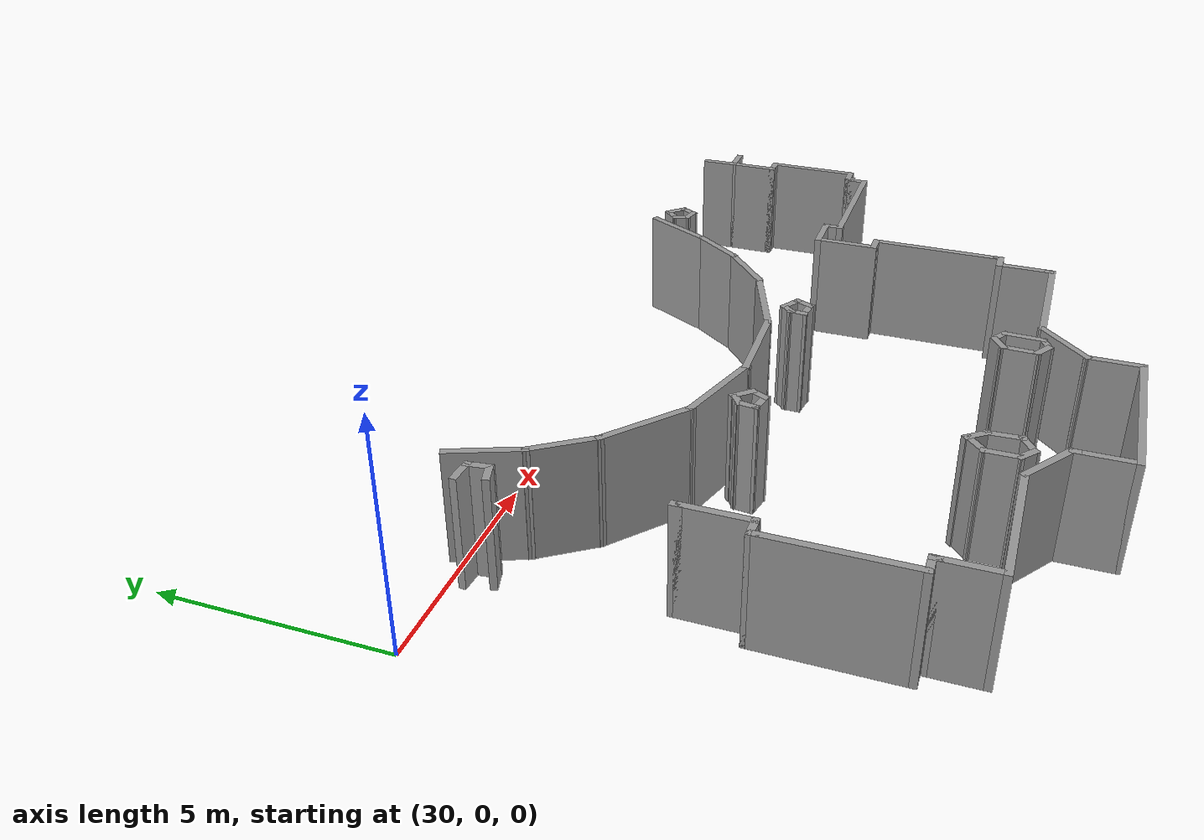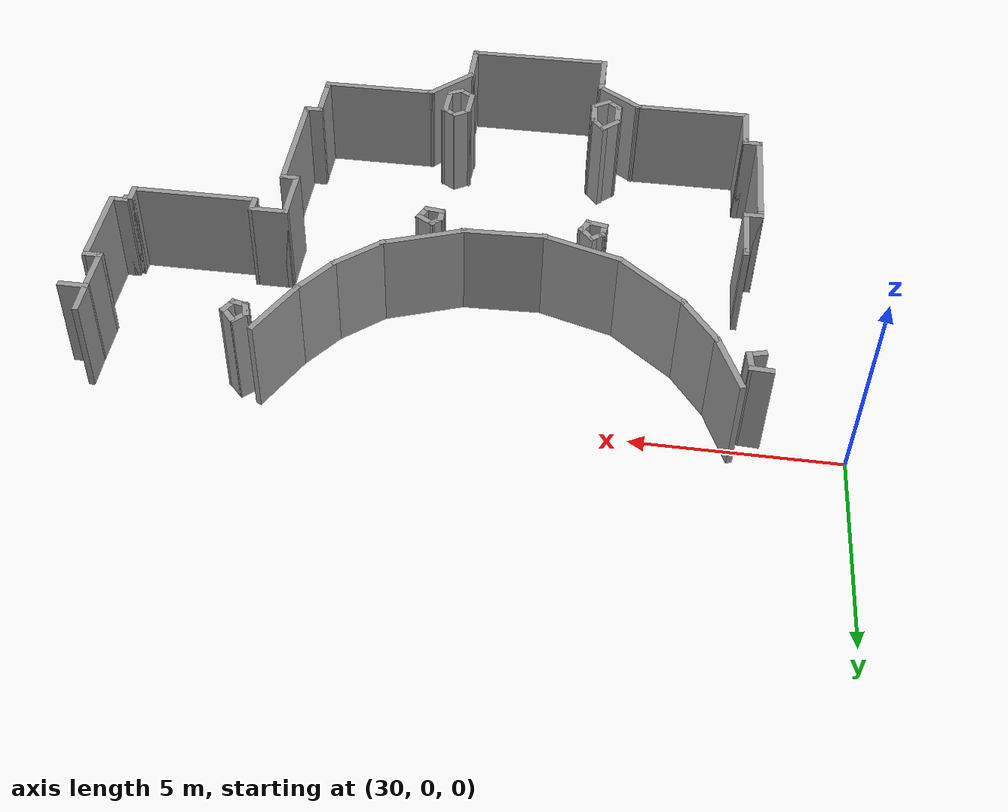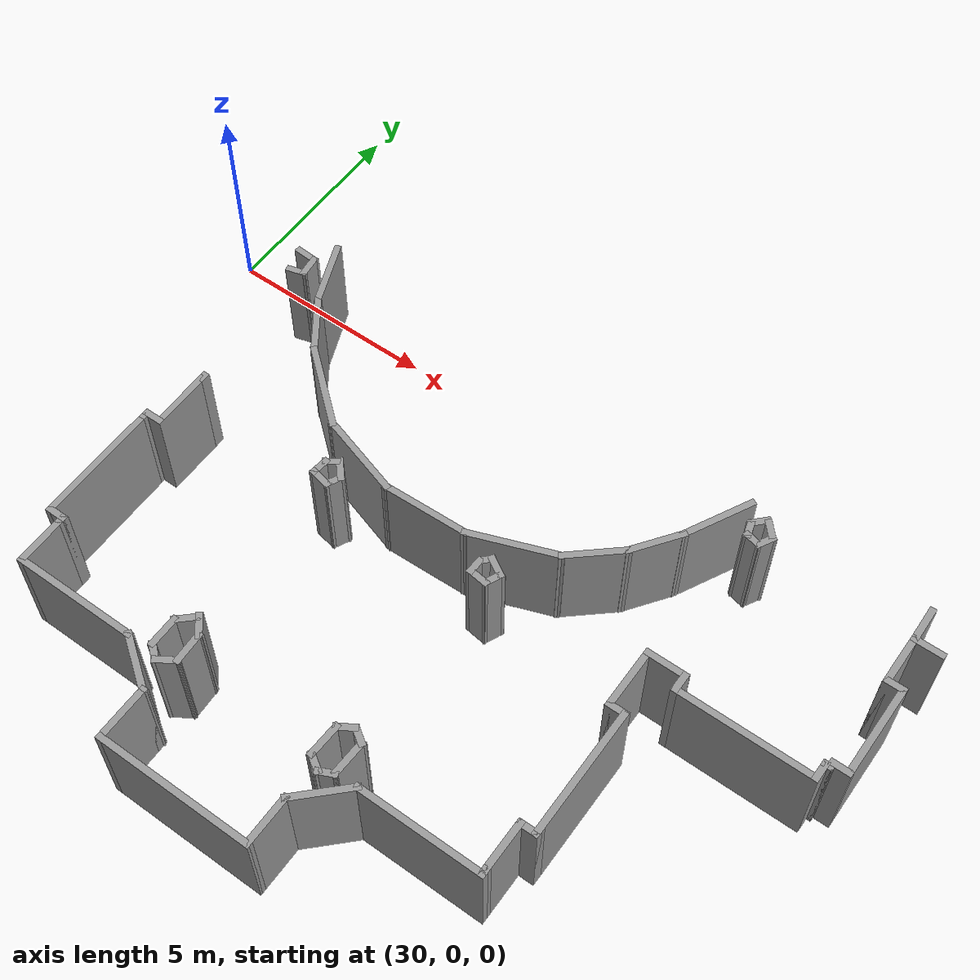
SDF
<sdf version="1.7">
 <model name="TD_n2">
  <pose>-6.42415 -9.1609 0 0 -0 0</pose>
  <link name="Wall_248">
   <collision name="Wall_248_Collision">
    <geometry><box><size>0.75 0.15 2.5</size></box></geometry>
    <pose>0 0 1.25 0 -0 0</pose>
   </collision>
   <visual name="Wall_248_Visual">
    <pose>0 0 1.25 0 -0 0</pose>
    <geometry><box><size>0.75 0.15 2.5</size></box></geometry>
    <material>
     <script><uri>file://media/materials/scripts/gazebo.material</uri><name>Gazebo/Grey</name></script>
     <ambient>1 1 1 1</ambient>
    </material>
    <meta><layer>0</layer></meta>
   </visual>
   <pose>54.6332 8.28733 0 0 -0 3.14159</pose>
  </link>
  <link name="Wall_249">
   <collision name="Wall_249_Collision">
    <geometry><box><size>1.25 0.15 2.5</size></box></geometry>
    <pose>0 0 1.25 0 -0 0</pose>
   </collision>
   <visual name="Wall_249_Visual">
    <pose>0 0 1.25 0 -0 0</pose>
    <geometry><box><size>1.25 0.15 2.5</size></box></geometry>
    <material>
     <script><uri>file://media/materials/scripts/gazebo.material</uri><name>Gazebo/Grey</name></script>
     <ambient>1 1 1 1</ambient>
    </material>
    <meta><layer>0</layer></meta>
   </visual>
   <pose>54.3332 7.73733 0 0 -0 -1.5708</pose>
  </link>
  <link name="Wall_250">
   <collision name="Wall_250_Collision">
    <geometry><box><size>0.5 0.15 2.5</size></box></geometry>
    <pose>0 0 1.25 0 -0 0</pose>
   </collision>
   <visual name="Wall_250_Visual">
    <pose>0 0 1.25 0 -0 0</pose>
    <geometry><box><size>0.5 0.15 2.5</size></box></geometry>
    <material>
     <script><uri>file://media/materials/scripts/gazebo.material</uri><name>Gazebo/Grey</name></script>
     <ambient>1 1 1 1</ambient>
    </material>
    <meta><layer>0</layer></meta>
   </visual>
   <pose>54.5082 7.18733 0 0 -0 0</pose>
  </link>
  <link name="Wall_252">
   <collision name="Wall_252_Collision">
    <geometry><box><size>2.25 0.15 2.5</size></box></geometry>
    <pose>0 0 1.25 0 -0 0</pose>
   </collision>
   <visual name="Wall_252_Visual">
    <pose>0 0 1.25 0 -0 0</pose>
    <geometry><box><size>2.25 0.15 2.5</size></box></geometry>
    <material>
     <script><uri>file://media/materials/scripts/gazebo.material</uri><name>Gazebo/Grey</name></script>
     <ambient>1 1 1 1</ambient>
    </material>
    <meta><layer>0</layer></meta>
   </visual>
   <pose>54.6832 6.13733 0 0 -0 -1.5708</pose>
  </link>
  <link name="Wall_253">
   <collision name="Wall_253_Collision">
    <geometry><box><size>0.5 0.15 2.5</size></box></geometry>
    <pose>0 0 1.25 0 -0 0</pose>
   </collision>
   <visual name="Wall_253_Visual">
    <pose>0 0 1.25 0 -0 0</pose>
    <geometry><box><size>0.5 0.15 2.5</size></box></geometry>
    <material>
     <script><uri>file://media/materials/scripts/gazebo.material</uri><name>Gazebo/Grey</name></script>
     <ambient>1 1 1 1</ambient>
    </material>
    <meta><layer>0</layer></meta>
   </visual>
   <pose>54.5082 5.08733 0 0 -0 3.14159</pose>
  </link>
  <link name="Wall_254">
   <collision name="Wall_254_Collision">
    <geometry><box><size>0.25 0.15 2.5</size></box></geometry>
    <pose>0 0 1.25 0 -0 0</pose>
   </collision>
   <visual name="Wall_254_Visual">
    <pose>0 0 1.25 0 -0 0</pose>
    <geometry><box><size>0.25 0.15 2.5</size></box></geometry>
    <material>
     <script><uri>file://media/materials/scripts/gazebo.material</uri><name>Gazebo/Grey</name></script>
     <ambient>1 1 1 1</ambient>
    </material>
    <meta><layer>0</layer></meta>
   </visual>
   <pose>54.3332 5.03733 0 0 -0 -1.5708</pose>
  </link>
  <link name="Wall_255">
   <collision name="Wall_255_Collision">
    <geometry><box><size>0.25 0.15 2.5</size></box></geometry>
    <pose>0 0 1.25 0 -0 0</pose>
   </collision>
   <visual name="Wall_255_Visual">
    <pose>0 0 1.25 0 -0 0</pose>
    <geometry><box><size>0.25 0.15 2.5</size></box></geometry>
    <material>
     <script><uri>file://media/materials/scripts/gazebo.material</uri><name>Gazebo/Grey</name></script>
     <ambient>1 1 1 1</ambient>
    </material>
    <meta><layer>0</layer></meta>
   </visual>
   <pose>54.2832 4.98733 0 0 -0 3.14159</pose>
  </link>
  <link name="Wall_256">
   <collision name="Wall_256_Collision">
    <geometry><box><size>0.5 0.15 2.5</size></box></geometry>
    <pose>0 0 1.25 0 -0 0</pose>
   </collision>
   <visual name="Wall_256_Visual">
    <pose>0 0 1.25 0 -0 0</pose>
    <geometry><box><size>0.5 0.15 2.5</size></box></geometry>
    <material>
     <script><uri>file://media/materials/scripts/gazebo.material</uri><name>Gazebo/Grey</name></script>
     <ambient>1 1 1 1</ambient>
    </material>
    <meta><layer>0</layer></meta>
   </visual>
   <pose>54.2332 4.81233 0 0 -0 -1.5708</pose>
  </link>
  <link name="Wall_257">
   <collision name="Wall_257_Collision">
    <geometry><box><size>3.25 0.15 2.5</size></box></geometry>
    <pose>0 0 1.25 0 -0 0</pose>
   </collision>
   <visual name="Wall_257_Visual">
    <pose>0 0 1.25 0 -0 0</pose>
    <geometry><box><size>3.25 0.15 2.5</size></box></geometry>
    <material>
     <script><uri>file://media/materials/scripts/gazebo.material</uri><name>Gazebo/Grey</name></script>
     <ambient>1 1 1 1</ambient>
    </material>
    <meta><layer>0</layer></meta>
   </visual>
   <pose>52.6832 4.63733 0 0 -0 3.14159</pose>
  </link>
  <link name="Wall_258">
   <collision name="Wall_258_Collision">
    <geometry><box><size>0.5 0.15 2.5</size></box></geometry>
    <pose>0 0 1.25 0 -0 0</pose>
   </collision>
   <visual name="Wall_258_Visual">
    <pose>0 0 1.25 0 -0 0</pose>
    <geometry><box><size>0.5 0.15 2.5</size></box></geometry>
    <material>
     <script><uri>file://media/materials/scripts/gazebo.material</uri><name>Gazebo/Grey</name></script>
     <ambient>1 1 1 1</ambient>
    </material>
    <meta><layer>0</layer></meta>
   </visual>
   <pose>51.1332 4.81233 0 0 -0 1.5708</pose>
  </link>
  <link name="Wall_259">
   <collision name="Wall_259_Collision">
    <geometry><box><size>1 0.15 2.5</size></box></geometry>
    <pose>0 0 1.25 0 -0 0</pose>
   </collision>
   <visual name="Wall_259_Visual">
    <pose>0 0 1.25 0 -0 0</pose>
    <geometry><box><size>1 0.15 2.5</size></box></geometry>
    <material>
     <script><uri>file://media/materials/scripts/gazebo.material</uri><name>Gazebo/Grey</name></script>
     <ambient>1 1 1 1</ambient>
    </material>
    <meta><layer>0</layer></meta>
   </visual>
   <pose>50.7082 4.98733 0 0 -0 3.14159</pose>
  </link>
  <link name="Wall_261">
   <collision name="Wall_261_Collision">
    <geometry><box><size>1.5 0.15 2.5</size></box></geometry>
    <pose>0 0 1.25 0 -0 0</pose>
   </collision>
   <visual name="Wall_261_Visual">
    <pose>0 0 1.25 0 -0 0</pose>
    <geometry><box><size>1.5 0.15 2.5</size></box></geometry>
    <material>
     <script><uri>file://media/materials/scripts/gazebo.material</uri><name>Gazebo/Grey</name></script>
     <ambient>1 1 1 1</ambient>
    </material>
    <meta><layer>0</layer></meta>
   </visual>
   <pose>50.2832 4.31233 0 0 -0 -1.5708</pose>
  </link>
  <link name="Wall_262">
   <collision name="Wall_262_Collision">
    <geometry><box><size>0.5 0.15 2.5</size></box></geometry>
    <pose>0 0 1.25 0 -0 0</pose>
   </collision>
   <visual name="Wall_262_Visual">
    <pose>0 0 1.25 0 -0 0</pose>
    <geometry><box><size>0.5 0.15 2.5</size></box></geometry>
    <material>
     <script><uri>file://media/materials/scripts/gazebo.material</uri><name>Gazebo/Grey</name></script>
     <ambient>1 1 1 1</ambient>
    </material>
    <meta><layer>0</layer></meta>
   </visual>
   <pose>50.4582 3.63733 0 0 -0 0</pose>
  </link>
  <link name="Wall_264">
   <collision name="Wall_264_Collision">
    <geometry><box><size>3 0.15 2.5</size></box></geometry>
    <pose>0 0 1.25 0 -0 0</pose>
   </collision>
   <visual name="Wall_264_Visual">
    <pose>0 0 1.25 0 -0 0</pose>
    <geometry><box><size>3 0.15 2.5</size></box></geometry>
    <material>
     <script><uri>file://media/materials/scripts/gazebo.material</uri><name>Gazebo/Grey</name></script>
     <ambient>1 1 1 1</ambient>
    </material>
    <meta><layer>0</layer></meta>
   </visual>
   <pose>50.6332 2.21233 0 0 -0 -1.5708</pose>
  </link>
  <link name="Wall_265">
   <collision name="Wall_265_Collision">
    <geometry><box><size>0.25 0.15 2.5</size></box></geometry>
    <pose>0 0 1.25 0 -0 0</pose>
   </collision>
   <visual name="Wall_265_Visual">
    <pose>0 0 1.25 0 -0 0</pose>
    <geometry><box><size>0.25 0.15 2.5</size></box></geometry>
    <material>
     <script><uri>file://media/materials/scripts/gazebo.material</uri><name>Gazebo/Grey</name></script>
     <ambient>1 1 1 1</ambient>
    </material>
    <meta><layer>0</layer></meta>
   </visual>
   <pose>50.6332 0.737326 0 0 -0 -1.5708</pose>
  </link>
  <link name="Wall_266">
   <collision name="Wall_266_Collision">
    <geometry><box><size>0.5 0.15 2.5</size></box></geometry>
    <pose>0 0 1.25 0 -0 0</pose>
   </collision>
   <visual name="Wall_266_Visual">
    <pose>0 0 1.25 0 -0 0</pose>
    <geometry><box><size>0.5 0.15 2.5</size></box></geometry>
    <material>
     <script><uri>file://media/materials/scripts/gazebo.material</uri><name>Gazebo/Grey</name></script>
     <ambient>1 1 1 1</ambient>
    </material>
    <meta><layer>0</layer></meta>
   </visual>
   <pose>50.4582 0.687325 0 0 -0 3.14159</pose>
  </link>
  <link name="Wall_268">
   <collision name="Wall_268_Collision">
    <geometry><box><size>1.25 0.15 2.5</size></box></geometry>
    <pose>0 0 1.25 0 -0 0</pose>
   </collision>
   <visual name="Wall_268_Visual">
    <pose>0 0 1.25 0 -0 0</pose>
    <geometry><box><size>1.25 0.15 2.5</size></box></geometry>
    <material>
     <script><uri>file://media/materials/scripts/gazebo.material</uri><name>Gazebo/Grey</name></script>
     <ambient>1 1 1 1</ambient>
    </material>
    <meta><layer>0</layer></meta>
   </visual>
   <pose>50.2832 0.137325 0 0 -0 -1.5708</pose>
  </link>
  <link name="Wall_269">
   <collision name="Wall_269_Collision">
    <geometry><box><size>0.25 0.15 2.5</size></box></geometry>
    <pose>0 0 1.25 0 -0 0</pose>
   </collision>
   <visual name="Wall_269_Visual">
    <pose>0 0 1.25 0 -0 0</pose>
    <geometry><box><size>0.25 0.15 2.5</size></box></geometry>
    <material>
     <script><uri>file://media/materials/scripts/gazebo.material</uri><name>Gazebo/Grey</name></script>
     <ambient>1 1 1 1</ambient>
    </material>
    <meta><layer>0</layer></meta>
   </visual>
   <pose>50.2832 -0.462674 0 0 -0 -1.5708</pose>
  </link>
  <link name="Wall_270">
   <collision name="Wall_270_Collision">
    <geometry><box><size>3 0.15 2.5</size></box></geometry>
    <pose>0 0 1.25 0 -0 0</pose>
   </collision>
   <visual name="Wall_270_Visual">
    <pose>0 0 1.25 0 -0 0</pose>
    <geometry><box><size>3 0.15 2.5</size></box></geometry>
    <material>
     <script><uri>file://media/materials/scripts/gazebo.material</uri><name>Gazebo/Grey</name></script>
     <ambient>1 1 1 1</ambient>
    </material>
    <meta><layer>0</layer></meta>
   </visual>
   <pose>48.8582 -0.512674 0 0 -0 3.14159</pose>
  </link>
  <link name="Wall_272">
   <collision name="Wall_272_Collision">
    <geometry><box><size>1.5 0.15 2.5</size></box></geometry>
    <pose>0 0 1.25 0 -0 0</pose>
   </collision>
   <visual name="Wall_272_Visual">
    <pose>0 0 1.25 0 -0 0</pose>
    <geometry><box><size>1.5 0.15 2.5</size></box></geometry>
    <material>
     <script><uri>file://media/materials/scripts/gazebo.material</uri><name>Gazebo/Grey</name></script>
     <ambient>1 1 1 1</ambient>
    </material>
    <meta><layer>0</layer></meta>
   </visual>
   <pose>46.9559 -0.989971 0 0 -0 -2.35619</pose>
  </link>
  <link name="Wall_273">
   <collision name="Wall_273_Collision">
    <geometry><box><size>1.25 0.15 2.5</size></box></geometry>
    <pose>0 0 1.25 0 -0 0</pose>
   </collision>
   <visual name="Wall_273_Visual">
    <pose>0 0 1.25 0 -0 0</pose>
    <geometry><box><size>1.25 0.15 2.5</size></box></geometry>
    <material>
     <script><uri>file://media/materials/scripts/gazebo.material</uri><name>Gazebo/Grey</name></script>
     <ambient>1 1 1 1</ambient>
    </material>
    <meta><layer>0</layer></meta>
   </visual>
   <pose>46.4786 -2.01727 0 0 -0 -1.5708</pose>
  </link>
  <link name="Wall_274">
   <collision name="Wall_274_Collision">
    <geometry><box><size>3.75 0.15 2.5</size></box></geometry>
    <pose>0 0 1.25 0 -0 0</pose>
   </collision>
   <visual name="Wall_274_Visual">
    <pose>0 0 1.25 0 -0 0</pose>
    <geometry><box><size>3.75 0.15 2.5</size></box></geometry>
    <material>
     <script><uri>file://media/materials/scripts/gazebo.material</uri><name>Gazebo/Grey</name></script>
     <ambient>1 1 1 1</ambient>
    </material>
    <meta><layer>0</layer></meta>
   </visual>
   <pose>44.6786 -2.56727 0 0 -0 3.14159</pose>
  </link>
  <link name="Wall_275">
   <collision name="Wall_275_Collision">
    <geometry><box><size>1.25 0.15 2.5</size></box></geometry>
    <pose>0 0 1.25 0 -0 0</pose>
   </collision>
   <visual name="Wall_275_Visual">
    <pose>0 0 1.25 0 -0 0</pose>
    <geometry><box><size>1.25 0.15 2.5</size></box></geometry>
    <material>
     <script><uri>file://media/materials/scripts/gazebo.material</uri><name>Gazebo/Grey</name></script>
     <ambient>1 1 1 1</ambient>
    </material>
    <meta><layer>0</layer></meta>
   </visual>
   <pose>42.8786 -2.01727 0 0 -0 1.5708</pose>
  </link>
  <link name="Wall_276">
   <collision name="Wall_276_Collision">
    <geometry><box><size>0.25 0.15 2.5</size></box></geometry>
    <pose>0 0 1.25 0 -0 0</pose>
   </collision>
   <visual name="Wall_276_Visual">
    <pose>0 0 1.25 0 -0 0</pose>
    <geometry><box><size>0.25 0.15 2.5</size></box></geometry>
    <material>
     <script><uri>file://media/materials/scripts/gazebo.material</uri><name>Gazebo/Grey</name></script>
     <ambient>1 1 1 1</ambient>
    </material>
    <meta><layer>0</layer></meta>
   </visual>
   <pose>42.8786 -1.41727 0 0 -0 1.5708</pose>
  </link>
  <link name="Wall_277">
   <collision name="Wall_277_Collision">
    <geometry><box><size>1.42122 0.15 2.5</size></box></geometry>
    <pose>0 0 1.25 0 -0 0</pose>
   </collision>
   <visual name="Wall_277_Visual">
    <pose>0 0 1.25 0 -0 0</pose>
    <geometry><box><size>1.42122 0.15 2.5</size></box></geometry>
    <material>
     <script><uri>file://media/materials/scripts/gazebo.material</uri><name>Gazebo/Grey</name></script>
     <ambient>1 1 1 1</ambient>
    </material>
    <meta><layer>0</layer></meta>
   </visual>
   <pose>42.3609 -0.998538 0 0 -0 2.52272</pose>
  </link>
  <link name="Wall_278">
   <collision name="Wall_278_Collision">
    <geometry><box><size>3 0.15 2.5</size></box></geometry>
    <pose>0 0 1.25 0 -0 0</pose>
   </collision>
   <visual name="Wall_278_Visual">
    <pose>0 0 1.25 0 -0 0</pose>
    <geometry><box><size>3 0.15 2.5</size></box></geometry>
    <material>
     <script><uri>file://media/materials/scripts/gazebo.material</uri><name>Gazebo/Grey</name></script>
     <ambient>1 1 1 1</ambient>
    </material>
    <meta><layer>0</layer></meta>
   </visual>
   <pose>40.4182 -0.629807 0 0 -0 3.14159</pose>
  </link>
  <link name="Wall_279">
   <collision name="Wall_279_Collision">
    <geometry><box><size>1.25 0.15 2.5</size></box></geometry>
    <pose>0 0 1.25 0 -0 0</pose>
   </collision>
   <visual name="Wall_279_Visual">
    <pose>0 0 1.25 0 -0 0</pose>
    <geometry><box><size>1.25 0.15 2.5</size></box></geometry>
    <material>
     <script><uri>file://media/materials/scripts/gazebo.material</uri><name>Gazebo/Grey</name></script>
     <ambient>1 1 1 1</ambient>
    </material>
    <meta><layer>0</layer></meta>
   </visual>
   <pose>38.9932 -0.079807 0 0 -0 1.5708</pose>
  </link>
  <link name="Wall_280">
   <collision name="Wall_280_Collision">
    <geometry><box><size>0.25 0.15 2.5</size></box></geometry>
    <pose>0 0 1.25 0 -0 0</pose>
   </collision>
   <visual name="Wall_280_Visual">
    <pose>0 0 1.25 0 -0 0</pose>
    <geometry><box><size>0.25 0.15 2.5</size></box></geometry>
    <material>
     <script><uri>file://media/materials/scripts/gazebo.material</uri><name>Gazebo/Grey</name></script>
     <ambient>1 1 1 1</ambient>
    </material>
    <meta><layer>0</layer></meta>
   </visual>
   <pose>38.9932 0.520192 0 0 -0 1.5708</pose>
  </link>
  <link name="Wall_281">
   <collision name="Wall_281_Collision">
    <geometry><box><size>0.5 0.15 2.5</size></box></geometry>
    <pose>0 0 1.25 0 -0 0</pose>
   </collision>
   <visual name="Wall_281_Visual">
    <pose>0 0 1.25 0 -0 0</pose>
    <geometry><box><size>0.5 0.15 2.5</size></box></geometry>
    <material>
     <script><uri>file://media/materials/scripts/gazebo.material</uri><name>Gazebo/Grey</name></script>
     <ambient>1 1 1 1</ambient>
    </material>
    <meta><layer>0</layer></meta>
   </visual>
   <pose>38.8182 0.570192 0 0 -0 3.14159</pose>
  </link>
  <link name="Wall_282">
   <collision name="Wall_282_Collision">
    <geometry><box><size>3 0.15 2.5</size></box></geometry>
    <pose>0 0 1.25 0 -0 0</pose>
   </collision>
   <visual name="Wall_282_Visual">
    <pose>0 0 1.25 0 -0 0</pose>
    <geometry><box><size>3 0.15 2.5</size></box></geometry>
    <material>
     <script><uri>file://media/materials/scripts/gazebo.material</uri><name>Gazebo/Grey</name></script>
     <ambient>1 1 1 1</ambient>
    </material>
    <meta><layer>0</layer></meta>
   </visual>
   <pose>38.6432 1.99519 0 0 -0 1.5708</pose>
  </link>
  <link name="Wall_283">
   <collision name="Wall_283_Collision">
    <geometry><box><size>0.25 0.15 2.5</size></box></geometry>
    <pose>0 0 1.25 0 -0 0</pose>
   </collision>
   <visual name="Wall_283_Visual">
    <pose>0 0 1.25 0 -0 0</pose>
    <geometry><box><size>0.25 0.15 2.5</size></box></geometry>
    <material>
     <script><uri>file://media/materials/scripts/gazebo.material</uri><name>Gazebo/Grey</name></script>
     <ambient>1 1 1 1</ambient>
    </material>
    <meta><layer>0</layer></meta>
   </visual>
   <pose>38.6432 3.47019 0 0 -0 1.5708</pose>
  </link>
  <link name="Wall_284">
   <collision name="Wall_284_Collision">
    <geometry><box><size>0.5 0.15 2.5</size></box></geometry>
    <pose>0 0 1.25 0 -0 0</pose>
   </collision>
   <visual name="Wall_284_Visual">
    <pose>0 0 1.25 0 -0 0</pose>
    <geometry><box><size>0.5 0.15 2.5</size></box></geometry>
    <material>
     <script><uri>file://media/materials/scripts/gazebo.material</uri><name>Gazebo/Grey</name></script>
     <ambient>1 1 1 1</ambient>
    </material>
    <meta><layer>0</layer></meta>
   </visual>
   <pose>38.8182 3.52019 0 0 -0 0</pose>
  </link>
  <link name="Wall_286">
   <collision name="Wall_286_Collision">
    <geometry><box><size>1.5 0.15 2.5</size></box></geometry>
    <pose>0 0 1.25 0 -0 0</pose>
   </collision>
   <visual name="Wall_286_Visual">
    <pose>0 0 1.25 0 -0 0</pose>
    <geometry><box><size>1.5 0.15 2.5</size></box></geometry>
    <material>
     <script><uri>file://media/materials/scripts/gazebo.material</uri><name>Gazebo/Grey</name></script>
     <ambient>1 1 1 1</ambient>
    </material>
    <meta><layer>0</layer></meta>
   </visual>
   <pose>38.9932 4.19519 0 0 -0 1.5708</pose>
  </link>
  <link name="Wall_287">
   <collision name="Wall_287_Collision">
    <geometry><box><size>0.25 0.15 2.5</size></box></geometry>
    <pose>0 0 1.25 0 -0 0</pose>
   </collision>
   <visual name="Wall_287_Visual">
    <pose>0 0 1.25 0 -0 0</pose>
    <geometry><box><size>0.25 0.15 2.5</size></box></geometry>
    <material>
     <script><uri>file://media/materials/scripts/gazebo.material</uri><name>Gazebo/Grey</name></script>
     <ambient>1 1 1 1</ambient>
    </material>
    <meta><layer>0</layer></meta>
   </visual>
   <pose>38.9932 4.92019 0 0 -0 1.5708</pose>
  </link>
  <link name="Wall_508">
   <collision name="Wall_508_Collision">
    <geometry><box><size>0.897649 0.15 2.5</size></box></geometry>
    <pose>0 0 1.25 0 -0 0</pose>
   </collision>
   <visual name="Wall_508_Visual">
    <pose>0 0 1.25 0 -0 0</pose>
    <geometry><box><size>0.897649 0.15 2.5</size></box></geometry>
    <material>
     <script><uri>file://media/materials/scripts/gazebo.material</uri><name>Gazebo/Grey</name></script>
     <ambient>1 1 1 1</ambient>
    </material>
    <meta><layer>0</layer></meta>
   </visual>
   <pose>54.3263 8.66109 0 0 -0 -1.55237</pose>
  </link>
  <link name="Wall_515">
   <collision name="Wall_515_Collision">
    <geometry><box><size>0.588634 0.15 2.5</size></box></geometry>
    <pose>0 0 1.25 0 -0 0</pose>
   </collision>
   <visual name="Wall_515_Visual">
    <pose>0 0 1.25 0 -0 0</pose>
    <geometry><box><size>0.588634 0.15 2.5</size></box></geometry>
    <material>
     <script><uri>file://media/materials/scripts/gazebo.material</uri><name>Gazebo/Grey</name></script>
     <ambient>1 1 1 1</ambient>
    </material>
    <meta><layer>0</layer></meta>
   </visual>
   <pose>42.5264 0.289694 0 0 -0 -2.38844</pose>
  </link>
  <link name="Wall_516">
   <collision name="Wall_516_Collision">
    <geometry><box><size>0.8 0.15 2.5</size></box></geometry>
    <pose>0 0 1.25 0 -0 0</pose>
   </collision>
   <visual name="Wall_516_Visual">
    <pose>0 0 1.25 0 -0 0</pose>
    <geometry><box><size>0.8 0.15 2.5</size></box></geometry>
    <material>
     <script><uri>file://media/materials/scripts/gazebo.material</uri><name>Gazebo/Grey</name></script>
     <ambient>1 1 1 1</ambient>
    </material>
    <meta><layer>0</layer></meta>
   </visual>
   <pose>42.3664 -0.185307 0 0 -0 -1.5708</pose>
  </link>
  <link name="Wall_517">
   <collision name="Wall_517_Collision">
    <geometry><box><size>0.504683 0.15 2.5</size></box></geometry>
    <pose>0 0 1.25 0 -0 0</pose>
   </collision>
   <visual name="Wall_517_Visual">
    <pose>0 0 1.25 0 -0 0</pose>
    <geometry><box><size>0.504683 0.15 2.5</size></box></geometry>
    <material>
     <script><uri>file://media/materials/scripts/gazebo.material</uri><name>Gazebo/Grey</name></script>
     <ambient>1 1 1 1</ambient>
    </material>
    <meta><layer>0</layer></meta>
   </visual>
   <pose>42.5014 -0.625306 0 0 -0 -0.705568</pose>
  </link>
  <link name="Wall_518">
   <collision name="Wall_518_Collision">
    <geometry><box><size>0.591022 0.15 2.5</size></box></geometry>
    <pose>0 0 1.25 0 -0 0</pose>
   </collision>
   <visual name="Wall_518_Visual">
    <pose>0 0 1.25 0 -0 0</pose>
    <geometry><box><size>0.591022 0.15 2.5</size></box></geometry>
    <material>
     <script><uri>file://media/materials/scripts/gazebo.material</uri><name>Gazebo/Grey</name></script>
     <ambient>1 1 1 1</ambient>
    </material>
    <meta><layer>0</layer></meta>
   </visual>
   <pose>42.8214 -0.620306 0 0 -0 0.575425</pose>
  </link>
  <link name="Wall_519">
   <collision name="Wall_519_Collision">
    <geometry><box><size>0.800692 0.15 2.5</size></box></geometry>
    <pose>0 0 1.25 0 -0 0</pose>
   </collision>
   <visual name="Wall_519_Visual">
    <pose>0 0 1.25 0 -0 0</pose>
    <geometry><box><size>0.800692 0.15 2.5</size></box></geometry>
    <material>
     <script><uri>file://media/materials/scripts/gazebo.material</uri><name>Gazebo/Grey</name></script>
     <ambient>1 1 1 1</ambient>
    </material>
    <meta><layer>0</layer></meta>
   </visual>
   <pose>42.9914 -0.175306 0 0 -0 1.61692</pose>
  </link>
  <link name="Wall_520">
   <collision name="Wall_520_Collision">
    <geometry><box><size>0.584166 0.15 2.5</size></box></geometry>
    <pose>0 0 1.25 0 -0 0</pose>
   </collision>
   <visual name="Wall_520_Visual">
    <pose>0 0 1.25 0 -0 0</pose>
    <geometry><box><size>0.584166 0.15 2.5</size></box></geometry>
    <material>
     <script><uri>file://media/materials/scripts/gazebo.material</uri><name>Gazebo/Grey</name></script>
     <ambient>1 1 1 1</ambient>
    </material>
    <meta><layer>0</layer></meta>
   </visual>
   <pose>42.8414 0.319694 0 0 -0 2.24194</pose>
  </link>
  <link name="Wall_522">
   <collision name="Wall_522_Collision">
    <geometry><box><size>0.505106 0.15 2.5</size></box></geometry>
    <pose>0 0 1.25 0 -0 0</pose>
   </collision>
   <visual name="Wall_522_Visual">
    <pose>0 0 1.25 0 -0 0</pose>
    <geometry><box><size>0.505106 0.15 2.5</size></box></geometry>
    <material>
     <script><uri>file://media/materials/scripts/gazebo.material</uri><name>Gazebo/Grey</name></script>
     <ambient>1 1 1 1</ambient>
    </material>
    <meta><layer>0</layer></meta>
   </visual>
   <pose>46.5064 0.304694 0 0 -0 -2.57702</pose>
  </link>
  <link name="Wall_523">
   <collision name="Wall_523_Collision">
    <geometry><box><size>0.860634 0.15 2.5</size></box></geometry>
    <pose>0 0 1.25 0 -0 0</pose>
   </collision>
   <visual name="Wall_523_Visual">
    <pose>0 0 1.25 0 -0 0</pose>
    <geometry><box><size>0.860634 0.15 2.5</size></box></geometry>
    <material>
     <script><uri>file://media/materials/scripts/gazebo.material</uri><name>Gazebo/Grey</name></script>
     <ambient>1 1 1 1</ambient>
    </material>
    <meta><layer>0</layer></meta>
   </visual>
   <pose>46.3414 -0.145307 0 0 -0 -1.61302</pose>
  </link>
  <link name="Wall_524">
   <collision name="Wall_524_Collision">
    <geometry><box><size>0.518917 0.15 2.5</size></box></geometry>
    <pose>0 0 1.25 0 -0 0</pose>
   </collision>
   <visual name="Wall_524_Visual">
    <pose>0 0 1.25 0 -0 0</pose>
    <geometry><box><size>0.518917 0.15 2.5</size></box></geometry>
    <material>
     <script><uri>file://media/materials/scripts/gazebo.material</uri><name>Gazebo/Grey</name></script>
     <ambient>1 1 1 1</ambient>
    </material>
    <meta><layer>0</layer></meta>
   </visual>
   <pose>46.4814 -0.600307 0 0 -0 -0.572966</pose>
  </link>
  <link name="Wall_525">
   <collision name="Wall_525_Collision">
    <geometry><box><size>0.472025 0.15 2.5</size></box></geometry>
    <pose>0 0 1.25 0 -0 0</pose>
   </collision>
   <visual name="Wall_525_Visual">
    <pose>0 0 1.25 0 -0 0</pose>
    <geometry><box><size>0.472025 0.15 2.5</size></box></geometry>
    <material>
     <script><uri>file://media/materials/scripts/gazebo.material</uri><name>Gazebo/Grey</name></script>
     <ambient>1 1 1 1</ambient>
    </material>
    <meta><layer>0</layer></meta>
   </visual>
   <pose>46.7814 -0.630306 0 0 -0 0.44976</pose>
  </link>
  <link name="Wall_526">
   <collision name="Wall_526_Collision">
    <geometry><box><size>0.930577 0.15 2.5</size></box></geometry>
    <pose>0 0 1.25 0 -0 0</pose>
   </collision>
   <visual name="Wall_526_Visual">
    <pose>0 0 1.25 0 -0 0</pose>
    <geometry><box><size>0.930577 0.15 2.5</size></box></geometry>
    <material>
     <script><uri>file://media/materials/scripts/gazebo.material</uri><name>Gazebo/Grey</name></script>
     <ambient>1 1 1 1</ambient>
    </material>
    <meta><layer>0</layer></meta>
   </visual>
   <pose>46.9414 -0.170306 0 0 -0 1.53235</pose>
  </link>
  <link name="Wall_527">
   <collision name="Wall_527_Collision">
    <geometry><box><size>0.438444 0.15 2.5</size></box></geometry>
    <pose>0 0 1.25 0 -0 0</pose>
   </collision>
   <visual name="Wall_527_Visual">
    <pose>0 0 1.25 0 -0 0</pose>
    <geometry><box><size>0.438444 0.15 2.5</size></box></geometry>
    <material>
     <script><uri>file://media/materials/scripts/gazebo.material</uri><name>Gazebo/Grey</name></script>
     <ambient>1 1 1 1</ambient>
    </material>
    <meta><layer>0</layer></meta>
   </visual>
   <pose>46.8364 0.299694 0 0 -0 2.55359</pose>
  </link>
  <link name="Wall_536">
   <collision name="Wall_536_Collision">
    <geometry><box><size>1.6326 0.15 2.5</size></box></geometry>
    <pose>0 0 1.25 0 -0 0</pose>
   </collision>
   <visual name="Wall_536_Visual">
    <pose>0 0 1.25 0 -0 0</pose>
    <geometry><box><size>1.6326 0.15 2.5</size></box></geometry>
    <material>
     <script><uri>file://media/materials/scripts/gazebo.material</uri><name>Gazebo/Grey</name></script>
     <ambient>1 1 1 1</ambient>
    </material>
    <meta><layer>0</layer></meta>
   </visual>
   <pose>39.3841 8.71485 0 0 -0 -1.19029</pose>
  </link>
  <link name="Wall_537">
   <collision name="Wall_537_Collision">
    <geometry><box><size>1.53334 0.15 2.5</size></box></geometry>
    <pose>0 0 1.25 0 -0 0</pose>
   </collision>
   <visual name="Wall_537_Visual">
    <pose>0 0 1.25 0 -0 0</pose>
    <geometry><box><size>1.53334 0.15 2.5</size></box></geometry>
    <material>
     <script><uri>file://media/materials/scripts/gazebo.material</uri><name>Gazebo/Grey</name></script>
     <ambient>1 1 1 1</ambient>
    </material>
    <meta><layer>0</layer></meta>
   </visual>
   <pose>40.0571 7.46065 0 0 -0 -0.958259</pose>
  </link>
  <link name="Wall_538">
   <collision name="Wall_538_Collision">
    <geometry><box><size>2.14752 0.15 2.5</size></box></geometry>
    <pose>0 0 1.25 0 -0 0</pose>
   </collision>
   <visual name="Wall_538_Visual">
    <pose>0 0 1.25 0 -0 0</pose>
    <geometry><box><size>2.14752 0.15 2.5</size></box></geometry>
    <material>
     <script><uri>file://media/materials/scripts/gazebo.material</uri><name>Gazebo/Grey</name></script>
     <ambient>1 1 1 1</ambient>
    </material>
    <meta><layer>0</layer></meta>
   </visual>
   <pose>41.2195 6.25234 0 0 -0 -0.69866</pose>
  </link>
  <link name="Wall_539">
   <collision name="Wall_539_Collision">
    <geometry><box><size>2.10443 0.15 2.5</size></box></geometry>
    <pose>0 0 1.25 0 -0 0</pose>
   </collision>
   <visual name="Wall_539_Visual">
    <pose>0 0 1.25 0 -0 0</pose>
    <geometry><box><size>2.10443 0.15 2.5</size></box></geometry>
    <material>
     <script><uri>file://media/materials/scripts/gazebo.material</uri><name>Gazebo/Grey</name></script>
     <ambient>1 1 1 1</ambient>
    </material>
    <meta><layer>0</layer></meta>
   </visual>
   <pose>42.9172 5.31933 0 0 -0 -0.301951</pose>
  </link>
  <link name="Wall_540">
   <collision name="Wall_540_Collision">
    <geometry><box><size>2.10801 0.15 2.5</size></box></geometry>
    <pose>0 0 1.25 0 -0 0</pose>
   </collision>
   <visual name="Wall_540_Visual">
    <pose>0 0 1.25 0 -0 0</pose>
    <geometry><box><size>2.10801 0.15 2.5</size></box></geometry>
    <material>
     <script><uri>file://media/materials/scripts/gazebo.material</uri><name>Gazebo/Grey</name></script>
     <ambient>1 1 1 1</ambient>
    </material>
    <meta><layer>0</layer></meta>
   </visual>
   <pose>44.8291 5.05932 0 0 -0 0.03124</pose>
  </link>
  <link name="Wall_541">
   <collision name="Wall_541_Collision">
    <geometry><box><size>2.17289 0.15 2.5</size></box></geometry>
    <pose>0 0 1.25 0 -0 0</pose>
   </collision>
   <visual name="Wall_541_Visual">
    <pose>0 0 1.25 0 -0 0</pose>
    <geometry><box><size>2.17289 0.15 2.5</size></box></geometry>
    <material>
     <script><uri>file://media/materials/scripts/gazebo.material</uri><name>Gazebo/Grey</name></script>
     <ambient>1 1 1 1</ambient>
    </material>
    <meta><layer>0</layer></meta>
   </visual>
   <pose>46.7563 5.4417 0 0 -0 0.355231</pose>
  </link>
  <link name="Wall_542">
   <collision name="Wall_542_Collision">
    <geometry><box><size>1.49388 0.15 2.5</size></box></geometry>
    <pose>0 0 1.25 0 -0 0</pose>
   </collision>
   <visual name="Wall_542_Visual">
    <pose>0 0 1.25 0 -0 0</pose>
    <geometry><box><size>1.49388 0.15 2.5</size></box></geometry>
    <material>
     <script><uri>file://media/materials/scripts/gazebo.material</uri><name>Gazebo/Grey</name></script>
     <ambient>1 1 1 1</ambient>
    </material>
    <meta><layer>0</layer></meta>
   </visual>
   <pose>48.2093 6.23704 0 0 -0 0.720971</pose>
  </link>
  <link name="Wall_543">
   <collision name="Wall_543_Collision">
    <geometry><box><size>1.3555 0.15 2.5</size></box></geometry>
    <pose>0 0 1.25 0 -0 0</pose>
   </collision>
   <visual name="Wall_543_Visual">
    <pose>0 0 1.25 0 -0 0</pose>
    <geometry><box><size>1.3555 0.15 2.5</size></box></geometry>
    <material>
     <script><uri>file://media/materials/scripts/gazebo.material</uri><name>Gazebo/Grey</name></script>
     <ambient>1 1 1 1</ambient>
    </material>
    <meta><layer>0</layer></meta>
   </visual>
   <pose>49.0659 7.17004 0 0 -0 0.947597</pose>
  </link>
  <link name="Wall_544">
   <collision name="Wall_544_Collision">
    <geometry><box><size>1.76434 0.15 2.5</size></box></geometry>
    <pose>0 0 1.25 0 -0 0</pose>
   </collision>
   <visual name="Wall_544_Visual">
    <pose>0 0 1.25 0 -0 0</pose>
    <geometry><box><size>1.76434 0.15 2.5</size></box></geometry>
    <material>
     <script><uri>file://media/materials/scripts/gazebo.material</uri><name>Gazebo/Grey</name></script>
     <ambient>1 1 1 1</ambient>
    </material>
    <meta><layer>0</layer></meta>
   </visual>
   <pose>49.7847 8.37836 0 0 -0 1.09867</pose>
  </link>
  <link name="Wall_577">
   <collision name="Wall_577_Collision">
    <geometry><box><size>0.587226 0.15 2.5</size></box></geometry>
    <pose>0 0 1.25 0 -0 0</pose>
   </collision>
   <visual name="Wall_577_Visual">
    <pose>0 0 1.25 0 -0 0</pose>
    <geometry><box><size>0.587226 0.15 2.5</size></box></geometry>
    <material>
     <script><uri>file://media/materials/scripts/gazebo.material</uri><name>Gazebo/Grey</name></script>
     <ambient>1 1 1 1</ambient>
    </material>
    <meta><layer>0</layer></meta>
   </visual>
   <pose>38.6739 8.84786 0 0 -0 -0.060532</pose>
  </link>
  <link name="Wall_578">
   <collision name="Wall_578_Collision">
    <geometry><box><size>0.576493 0.15 2.5</size></box></geometry>
    <pose>0 0 1.25 0 -0 0</pose>
   </collision>
   <visual name="Wall_578_Visual">
    <pose>0 0 1.25 0 -0 0</pose>
    <geometry><box><size>0.576493 0.15 2.5</size></box></geometry>
    <material>
     <script><uri>file://media/materials/scripts/gazebo.material</uri><name>Gazebo/Grey</name></script>
     <ambient>1 1 1 1</ambient>
    </material>
    <meta><layer>0</layer></meta>
   </visual>
   <pose>38.9185 8.62304 0 0 -0 -1.44644</pose>
  </link>
  <link name="Wall_579">
   <collision name="Wall_579_Collision">
    <geometry><box><size>0.493341 0.15 2.5</size></box></geometry>
    <pose>0 0 1.25 0 -0 0</pose>
   </collision>
   <visual name="Wall_579_Visual">
    <pose>0 0 1.25 0 -0 0</pose>
    <geometry><box><size>0.493341 0.15 2.5</size></box></geometry>
    <material>
     <script><uri>file://media/materials/scripts/gazebo.material</uri><name>Gazebo/Grey</name></script>
     <ambient>1 1 1 1</ambient>
    </material>
    <meta><layer>0</layer></meta>
   </visual>
   <pose>38.7797 8.36515 0 0 -0 -2.86858</pose>
  </link>
  <link name="Wall_583">
   <collision name="Wall_583_Collision">
    <geometry><box><size>0.525527 0.15 2.5</size></box></geometry>
    <pose>0 0 1.25 0 -0 0</pose>
   </collision>
   <visual name="Wall_583_Visual">
    <pose>0 0 1.25 0 -0 0</pose>
    <geometry><box><size>0.525527 0.15 2.5</size></box></geometry>
    <material>
     <script><uri>file://media/materials/scripts/gazebo.material</uri><name>Gazebo/Grey</name></script>
     <ambient>1 1 1 1</ambient>
    </material>
    <meta><layer>0</layer></meta>
   </visual>
   <pose>50.7974 8.75767 0 0 -0 -0.834539</pose>
  </link>
  <link name="Wall_584">
   <collision name="Wall_584_Collision">
    <geometry><box><size>0.476869 0.15 2.5</size></box></geometry>
    <pose>0 0 1.25 0 -0 0</pose>
   </collision>
   <visual name="Wall_584_Visual">
    <pose>0 0 1.25 0 -0 0</pose>
    <geometry><box><size>0.476869 0.15 2.5</size></box></geometry>
    <material>
     <script><uri>file://media/materials/scripts/gazebo.material</uri><name>Gazebo/Grey</name></script>
     <ambient>1 1 1 1</ambient>
    </material>
    <meta><layer>0</layer></meta>
   </visual>
   <pose>50.8452 8.47506 0 0 -0 -2.07014</pose>
  </link>
  <link name="Wall_585">
   <collision name="Wall_585_Collision">
    <geometry><box><size>0.453726 0.15 2.5</size></box></geometry>
    <pose>0 0 1.25 0 -0 0</pose>
   </collision>
   <visual name="Wall_585_Visual">
    <pose>0 0 1.25 0 -0 0</pose>
    <geometry><box><size>0.453726 0.15 2.5</size></box></geometry>
    <material>
     <script><uri>file://media/materials/scripts/gazebo.material</uri><name>Gazebo/Grey</name></script>
     <ambient>1 1 1 1</ambient>
    </material>
    <meta><layer>0</layer></meta>
   </visual>
   <pose>50.6191 8.36637 0 0 -0 2.9105</pose>
  </link>
  <link name="Wall_586">
   <collision name="Wall_586_Collision">
    <geometry><box><size>0.441531 0.15 2.5</size></box></geometry>
    <pose>0 0 1.25 0 -0 0</pose>
   </collision>
   <visual name="Wall_586_Visual">
    <pose>0 0 1.25 0 -0 0</pose>
    <geometry><box><size>0.441531 0.15 2.5</size></box></geometry>
    <material>
     <script><uri>file://media/materials/scripts/gazebo.material</uri><name>Gazebo/Grey</name></script>
     <ambient>1 1 1 1</ambient>
    </material>
    <meta><layer>0</layer></meta>
   </visual>
   <pose>50.4278 8.54028 0 0 -0 1.87368</pose>
  </link>
  <link name="Wall_587">
   <collision name="Wall_587_Collision">
    <geometry><box><size>0.500533 0.15 2.5</size></box></geometry>
    <pose>0 0 1.25 0 -0 0</pose>
   </collision>
   <visual name="Wall_587_Visual">
    <pose>0 0 1.25 0 -0 0</pose>
    <geometry><box><size>0.500533 0.15 2.5</size></box></geometry>
    <material>
     <script><uri>file://media/materials/scripts/gazebo.material</uri><name>Gazebo/Grey</name></script>
     <ambient>1 1 1 1</ambient>
    </material>
    <meta><layer>0</layer></meta>
   </visual>
   <pose>50.5061 8.8055 0 0 -0 0.80294</pose>
  </link>
  <link name="Wall_589">
   <collision name="Wall_589_Collision">
    <geometry><box><size>0.380217 0.15 2.5</size></box></geometry>
    <pose>0 0 1.25 0 -0 0</pose>
   </collision>
   <visual name="Wall_589_Visual">
    <pose>0 0 1.25 0 -0 0</pose>
    <geometry><box><size>0.380217 0.15 2.5</size></box></geometry>
    <material>
     <script><uri>file://media/materials/scripts/gazebo.material</uri><name>Gazebo/Grey</name></script>
     <ambient>1 1 1 1</ambient>
    </material>
    <meta><layer>0</layer></meta>
   </visual>
   <pose>42.5585 4.84255 0 0 -0 -2.54154</pose>
  </link>
  <link name="Wall_590">
   <collision name="Wall_590_Collision">
    <geometry><box><size>0.492345 0.15 2.5</size></box></geometry>
    <pose>0 0 1.25 0 -0 0</pose>
   </collision>
   <visual name="Wall_590_Visual">
    <pose>0 0 1.25 0 -0 0</pose>
    <geometry><box><size>0.492345 0.15 2.5</size></box></geometry>
    <material>
     <script><uri>file://media/materials/scripts/gazebo.material</uri><name>Gazebo/Grey</name></script>
     <ambient>1 1 1 1</ambient>
    </material>
    <meta><layer>0</layer></meta>
   </visual>
   <pose>42.4435 4.60755 0 0 -0 -1.6879</pose>
  </link>
  <link name="Wall_591">
   <collision name="Wall_591_Collision">
    <geometry><box><size>0.557922 0.15 2.5</size></box></geometry>
    <pose>0 0 1.25 0 -0 0</pose>
   </collision>
   <visual name="Wall_591_Visual">
    <pose>0 0 1.25 0 -0 0</pose>
    <geometry><box><size>0.557922 0.15 2.5</size></box></geometry>
    <material>
     <script><uri>file://media/materials/scripts/gazebo.material</uri><name>Gazebo/Grey</name></script>
     <ambient>1 1 1 1</ambient>
    </material>
    <meta><layer>0</layer></meta>
   </visual>
   <pose>42.6235 4.39755 0 0 -0 -0.197396</pose>
  </link>
  <link name="Wall_592">
   <collision name="Wall_592_Collision">
    <geometry><box><size>0.472025 0.15 2.5</size></box></geometry>
    <pose>0 0 1.25 0 -0 0</pose>
   </collision>
   <visual name="Wall_592_Visual">
    <pose>0 0 1.25 0 -0 0</pose>
    <geometry><box><size>0.472025 0.15 2.5</size></box></geometry>
    <material>
     <script><uri>file://media/materials/scripts/gazebo.material</uri><name>Gazebo/Grey</name></script>
     <ambient>1 1 1 1</ambient>
    </material>
    <meta><layer>0</layer></meta>
   </visual>
   <pose>42.8935 4.50255 0 0 -0 1.12104</pose>
  </link>
  <link name="Wall_593">
   <collision name="Wall_593_Collision">
    <geometry><box><size>0.567732 0.15 2.5</size></box></geometry>
    <pose>0 0 1.25 0 -0 0</pose>
   </collision>
   <visual name="Wall_593_Visual">
    <pose>0 0 1.25 0 -0 0</pose>
    <geometry><box><size>0.567732 0.15 2.5</size></box></geometry>
    <material>
     <script><uri>file://media/materials/scripts/gazebo.material</uri><name>Gazebo/Grey</name></script>
     <ambient>1 1 1 1</ambient>
    </material>
    <meta><layer>0</layer></meta>
   </visual>
   <pose>42.8235 4.80255 0 0 -0 2.30539</pose>
  </link>
  <link name="Wall_595">
   <collision name="Wall_595_Collision">
    <geometry><box><size>0.404951 0.15 2.5</size></box></geometry>
    <pose>0 0 1.25 0 -0 0</pose>
   </collision>
   <visual name="Wall_595_Visual">
    <pose>0 0 1.25 0 -0 0</pose>
    <geometry><box><size>0.404951 0.15 2.5</size></box></geometry>
    <material>
     <script><uri>file://media/materials/scripts/gazebo.material</uri><name>Gazebo/Grey</name></script>
     <ambient>1 1 1 1</ambient>
    </material>
    <meta><layer>0</layer></meta>
   </visual>
   <pose>46.5285 4.82255 0 0 -0 -2.3007</pose>
  </link>
  <link name="Wall_596">
   <collision name="Wall_596_Collision">
    <geometry><box><size>0.440172 0.15 2.5</size></box></geometry>
    <pose>0 0 1.25 0 -0 0</pose>
   </collision>
   <visual name="Wall_596_Visual">
    <pose>0 0 1.25 0 -0 0</pose>
    <geometry><box><size>0.440172 0.15 2.5</size></box></geometry>
    <material>
     <script><uri>file://media/materials/scripts/gazebo.material</uri><name>Gazebo/Grey</name></script>
     <ambient>1 1 1 1</ambient>
    </material>
    <meta><layer>0</layer></meta>
   </visual>
   <pose>46.4385 4.58255 0 0 -0 -1.60526</pose>
  </link>
  <link name="Wall_597">
   <collision name="Wall_597_Collision">
    <geometry><box><size>0.543192 0.15 2.5</size></box></geometry>
    <pose>0 0 1.25 0 -0 0</pose>
   </collision>
   <visual name="Wall_597_Visual">
    <pose>0 0 1.25 0 -0 0</pose>
    <geometry><box><size>0.543192 0.15 2.5</size></box></geometry>
    <material>
     <script><uri>file://media/materials/scripts/gazebo.material</uri><name>Gazebo/Grey</name></script>
     <ambient>1 1 1 1</ambient>
    </material>
    <meta><layer>0</layer></meta>
   </visual>
   <pose>46.6285 4.41255 0 0 -0 -0.12751</pose>
  </link>
  <link name="Wall_598">
   <collision name="Wall_598_Collision">
    <geometry><box><size>0.499285 0.15 2.5</size></box></geometry>
    <pose>0 0 1.25 0 -0 0</pose>
   </collision>
   <visual name="Wall_598_Visual">
    <pose>0 0 1.25 0 -0 0</pose>
    <geometry><box><size>0.499285 0.15 2.5</size></box></geometry>
    <material>
     <script><uri>file://media/materials/scripts/gazebo.material</uri><name>Gazebo/Grey</name></script>
     <ambient>1 1 1 1</ambient>
    </material>
    <meta><layer>0</layer></meta>
   </visual>
   <pose>46.8935 4.54755 0 0 -0 1.15839</pose>
  </link>
  <link name="Wall_599">
   <collision name="Wall_599_Collision">
    <geometry><box><size>0.558167 0.15 2.5</size></box></geometry>
    <pose>0 0 1.25 0 -0 0</pose>
   </collision>
   <visual name="Wall_599_Visual">
    <pose>0 0 1.25 0 -0 0</pose>
    <geometry><box><size>0.558167 0.15 2.5</size></box></geometry>
    <material>
     <script><uri>file://media/materials/scripts/gazebo.material</uri><name>Gazebo/Grey</name></script>
     <ambient>1 1 1 1</ambient>
    </material>
    <meta><layer>0</layer></meta>
   </visual>
   <pose>46.7885 4.81255 0 0 -0 2.60117</pose>
  </link>
  <static>1</static>
 </model>
</sdf>
